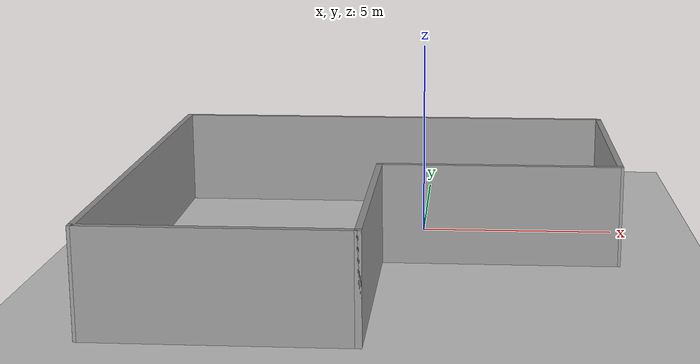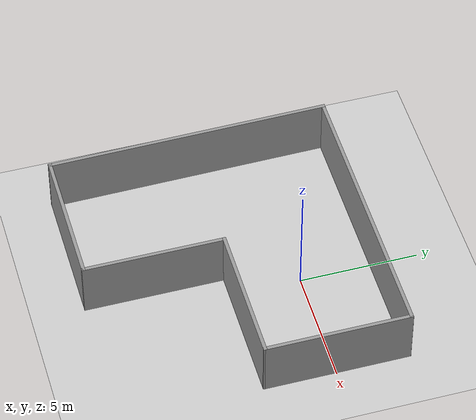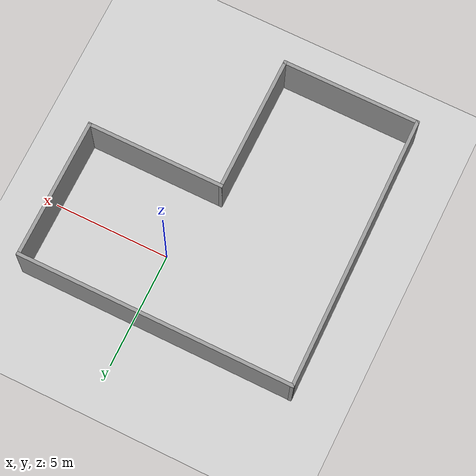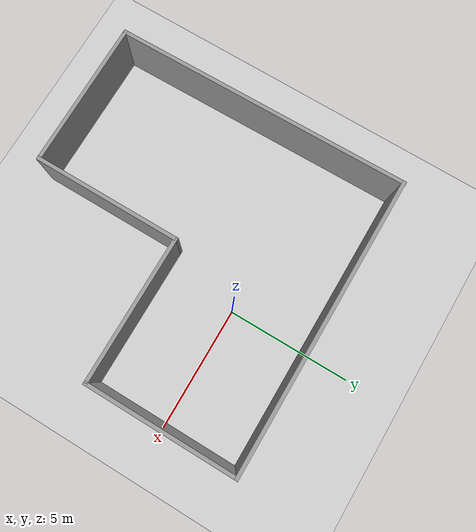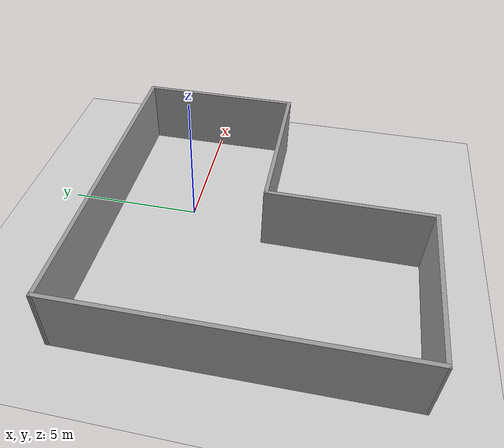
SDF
<sdf version="1.7">
 <world name="default">
  <light name="sun" type="directional">
   <pose>0 0 10 0 -0 0</pose>
   <diffuse>0.8 0.8 0.8 1</diffuse>
   <specular>0.2 0.2 0.2 1</specular>
   <attenuation>
    <range>1000</range>
    <constant>0.9</constant>
    <linear>0.01</linear>
    <quadratic>0.001</quadratic>
   </attenuation>
   <direction>-0.5 0.1 -0.9</direction>
   <spot><inner_angle>0</inner_angle><outer_angle>0</outer_angle><falloff>0</falloff></spot>
  </light>
  <model name="ground_plane">
   <static>1</static>
   <link name="link">
    <collision name="collision">
     <geometry><plane><normal>0 0 1</normal><size>100 100</size></plane></geometry>
     <surface><friction><ode><mu>100</mu><mu2>50</mu2></ode></friction></surface>
    </collision>
    <visual name="visual">
     <cast_shadows>0</cast_shadows>
     <geometry><plane><normal>0 0 1</normal><size>100 100</size></plane></geometry>
     <material>
      <script><uri>file://media/materials/scripts/gazebo.material</uri><name>Gazebo/Grey</name></script>
     </material>
    </visual>
   </link>
  </model>
  <gravity>0 0 -9.8</gravity>
  <magnetic_field>6e-06 2.3e-05 -4.2e-05</magnetic_field>
  <atmosphere type="adiabatic"/>
  <physics type="ode">
   <max_step_size>0.001</max_step_size>
   <real_time_factor>1</real_time_factor>
   <real_time_update_rate>1000</real_time_update_rate>
  </physics>
  <scene><ambient>0.4 0.4 0.4 1</ambient><background>0.7 0.7 0.7 1</background><shadows>1</shadows></scene>
  <audio><device>default</device></audio>
  <spherical_coordinates>
   <surface_model>EARTH_WGS84</surface_model>
   <latitude_deg>0</latitude_deg>
   <longitude_deg>0</longitude_deg>
   <elevation>0</elevation>
   <heading_deg>0</heading_deg>
  </spherical_coordinates>
  <model name="S1">
   <pose>-1.0557 -2.8768 0 0 -0 0</pose>
   <link name="Wall_23">
    <collision name="Wall_23_Collision">
     <geometry><box><size>12 0.15 2.5</size></box></geometry>
     <pose>0 0 1.25 0 -0 0</pose>
    </collision>
    <visual name="Wall_23_Visual">
     <pose>0 0 1.25 0 -0 0</pose>
     <geometry><box><size>12 0.15 2.5</size></box></geometry>
     <material>
      <script><uri>file://media/materials/scripts/gazebo.material</uri><name>Gazebo/Grey</name></script>
      <ambient>1 1 1 1</ambient>
     </material>
     <meta><layer>0</layer></meta>
    </visual>
    <pose>-0.000654 5.92122 0 0 -0 3.14159</pose>
   </link>
   <link name="Wall_24">
    <collision name="Wall_24_Collision">
     <geometry><box><size>12.0084 0.15 2.5</size></box></geometry>
     <pose>0 0 1.25 0 -0 0</pose>
    </collision>
    <visual name="Wall_24_Visual">
     <pose>0 0 1.25 0 -0 0</pose>
     <geometry><box><size>12.0084 0.15 2.5</size></box></geometry>
     <material>
      <script><uri>file://media/materials/scripts/gazebo.material</uri><name>Gazebo/Grey</name></script>
      <ambient>1 1 1 1</ambient>
     </material>
     <meta><layer>0</layer></meta>
    </visual>
    <pose>-5.85382 -0 0 0 -0 -1.55868</pose>
   </link>
   <link name="Wall_25">
    <collision name="Wall_25_Collision">
     <geometry><box><size>6 0.15 2.5</size></box></geometry>
     <pose>0 0 1.25 0 -0 0</pose>
    </collision>
    <visual name="Wall_25_Visual">
     <pose>0 0 1.25 0 -0 0</pose>
     <geometry><box><size>6 0.15 2.5</size></box></geometry>
     <material>
      <script><uri>file://media/materials/scripts/gazebo.material</uri><name>Gazebo/Grey</name></script>
      <ambient>1 1 1 1</ambient>
     </material>
     <meta><layer>0</layer></meta>
    </visual>
    <pose>-2.85699 -5.92878 0 0 -0 0</pose>
   </link>
   <link name="Wall_26">
    <collision name="Wall_26_Collision">
     <geometry><box><size>6 0.15 2.5</size></box></geometry>
     <pose>0 0 1.25 0 -0 0</pose>
    </collision>
    <visual name="Wall_26_Visual">
     <pose>0 0 1.25 0 -0 0</pose>
     <geometry><box><size>6 0.15 2.5</size></box></geometry>
     <material>
      <script><uri>file://media/materials/scripts/gazebo.material</uri><name>Gazebo/Grey</name></script>
      <ambient>1 1 1 1</ambient>
     </material>
     <meta><layer>0</layer></meta>
    </visual>
    <pose>0.068013 -3.00378 0 0 -0 1.5708</pose>
   </link>
   <link name="Wall_27">
    <collision name="Wall_27_Collision">
     <geometry><box><size>6 0.15 2.5</size></box></geometry>
     <pose>0 0 1.25 0 -0 0</pose>
    </collision>
    <visual name="Wall_27_Visual">
     <pose>0 0 1.25 0 -0 0</pose>
     <geometry><box><size>6 0.15 2.5</size></box></geometry>
     <material>
      <script><uri>file://media/materials/scripts/gazebo.material</uri><name>Gazebo/Grey</name></script>
      <ambient>1 1 1 1</ambient>
     </material>
     <meta><layer>0</layer></meta>
    </visual>
    <pose>2.99301 -0.078781 0 0 -0 0</pose>
   </link>
   <link name="Wall_28">
    <collision name="Wall_28_Collision">
     <geometry><box><size>6.14336 0.15 2.5</size></box></geometry>
     <pose>0 0 1.25 0 -0 0</pose>
    </collision>
    <visual name="Wall_28_Visual">
     <pose>0 0 1.25 0 -0 0</pose>
     <geometry><box><size>6.14336 0.15 2.5</size></box></geometry>
     <material>
      <script><uri>file://media/materials/scripts/gazebo.material</uri><name>Gazebo/Grey</name></script>
      <ambient>1 1 1 1</ambient>
     </material>
     <meta><layer>0</layer></meta>
    </visual>
    <pose>5.92223 2.9179 0 0 -0 1.56939</pose>
   </link>
   <static>1</static>
  </model>
 </world>
</sdf>
